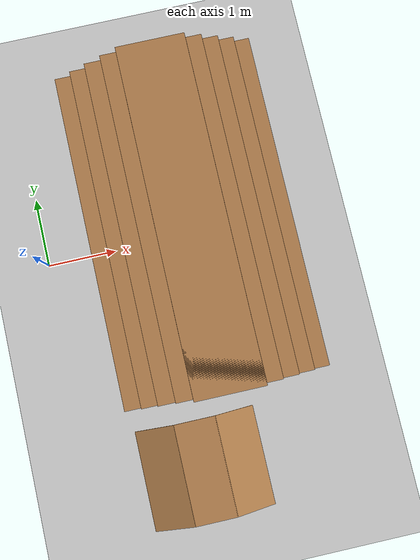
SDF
<sdf version="1.7">
 <world name="default">
  <physics type="ode">
   <max_step_size>0.001</max_step_size>
   <real_time_update_rate>1000</real_time_update_rate>
   <real_time_factor>1</real_time_factor>
   <type>world</type>
   <iters>500</iters>
  </physics>
  <light name="sun" type="directional">
   <pose>0 0 10 0 -0 0</pose>
   <diffuse>0.8 0.8 0.8 1</diffuse>
   <specular>0.2 0.2 0.2 1</specular>
   <attenuation>
    <range>1000</range>
    <constant>0.9</constant>
    <linear>0.01</linear>
    <quadratic>0.001</quadratic>
   </attenuation>
   <direction>-0.5 0.1 -0.9</direction>
   <spot><inner_angle>0</inner_angle><outer_angle>0</outer_angle><falloff>0</falloff></spot>
  </light>
  <model name="ground_plane">
   <static>1</static>
   <link name="link">
    <collision name="collision">
     <geometry><plane><normal>0 0 1</normal><size>100 100</size></plane></geometry>
     <surface><friction><ode><mu>100</mu><mu2>50</mu2></ode></friction></surface>
    </collision>
    <visual name="visual">
     <cast_shadows>0</cast_shadows>
     <geometry><plane><normal>0 0 1</normal><size>100 100</size></plane></geometry>
     <material>
      <script><uri>file://media/materials/scripts/gazebo.material</uri><name>Gazebo/Grey</name></script>
     </material>
    </visual>
   </link>
  </model>
  <gravity>0 0 -9.8</gravity>
  <magnetic_field>6e-06 2.3e-05 -4.2e-05</magnetic_field>
  <atmosphere type="adiabatic"/>
  <scene><ambient>0.4 0.4 0.4 1</ambient><background>0.7 0.7 0.7 1</background><shadows>1</shadows></scene>
  <spherical_coordinates>
   <surface_model>EARTH_WGS84</surface_model>
   <latitude_deg>0</latitude_deg>
   <longitude_deg>0</longitude_deg>
   <elevation>0</elevation>
   <heading_deg>0</heading_deg>
  </spherical_coordinates>
  <model name="stair14cm">
   <link name="link_1">
    <inertial>
     <mass>10</mass>
     <inertia><ixx>1.66667</ixx><ixy>0</ixy><ixz>0</ixz><iyy>1.66667</iyy><iyz>0</iyz><izz>1.66667</izz></inertia>
    </inertial>
    <pose>1.36897 0.002104 -0.14 0 -0 0</pose>
    <visual name="visual">
     <geometry><box><size>0.25 5 0.14</size></box></geometry>
     <material>
      <lighting>1</lighting>
      <script><uri>file://media/materials/scripts/gazebo.material</uri><name>Gazebo/Wood</name></script>
      <shader type="pixel"><normal_map>__default__</normal_map></shader>
      <ambient>0.3 0.3 0.3 1</ambient>
      <diffuse>0.7 0.7 0.7 1</diffuse>
      <specular>0.01 0.01 0.01 1</specular>
      <emissive>0 0 0 1</emissive>
     </material>
    </visual>
    <collision name="collision">
     <geometry><box><size>0.25 5 0.14</size></box></geometry>
     <surface>
      <friction>
       <ode><mu>1</mu><mu2>1</mu2><fdir1>0 0 0</fdir1><slip1>0</slip1><slip2>0</slip2></ode>
       <torsional>
        <coefficient>1</coefficient>
        <patch_radius>0</patch_radius>
        <surface_radius>0</surface_radius>
        <use_patch_radius>1</use_patch_radius>
        <ode><slip>0</slip></ode>
       </torsional>
      </friction>
      <bounce><restitution_coefficient>0</restitution_coefficient><threshold>1e+06</threshold></bounce>
      <contact>
       <collide_without_contact>0</collide_without_contact>
       <collide_without_contact_bitmask>1</collide_without_contact_bitmask>
       <collide_bitmask>1</collide_bitmask>
       <ode>
        <soft_cfm>0</soft_cfm>
        <soft_erp>0.2</soft_erp>
        <kp>1e+13</kp>
        <kd>1</kd>
        <max_vel>0.01</max_vel>
        <min_depth>0</min_depth>
       </ode>
       <bullet>
        <split_impulse>1</split_impulse>
        <split_impulse_penetration_threshold>-0.01</split_impulse_penetration_threshold>
        <soft_cfm>0</soft_cfm>
        <soft_erp>0.2</soft_erp>
        <kp>1e+13</kp>
        <kd>1</kd>
       </bullet>
      </contact>
     </surface>
    </collision>
   </link>
   <link name="link_1_clone">
    <inertial>
     <mass>10</mass>
     <inertia><ixx>1.66667</ixx><ixy>0</ixy><ixz>0</ixz><iyy>1.66667</iyy><iyz>0</iyz><izz>1.66667</izz></inertia>
    </inertial>
    <pose>1.11897 0.002104 -0.07 0 -0 0</pose>
    <visual name="visual">
     <geometry><box><size>0.25 5 0.28</size></box></geometry>
     <material>
      <lighting>1</lighting>
      <script><uri>file://media/materials/scripts/gazebo.material</uri><name>Gazebo/Wood</name></script>
      <shader type="pixel"><normal_map>__default__</normal_map></shader>
      <ambient>0.3 0.3 0.3 1</ambient>
      <diffuse>0.7 0.7 0.7 1</diffuse>
      <specular>0.01 0.01 0.01 1</specular>
      <emissive>0 0 0 1</emissive>
     </material>
    </visual>
    <collision name="collision">
     <geometry><box><size>0.25 5 0.28</size></box></geometry>
     <surface>
      <friction>
       <ode><mu>1</mu><mu2>1</mu2><fdir1>0 0 0</fdir1><slip1>0</slip1><slip2>0</slip2></ode>
       <torsional>
        <coefficient>1</coefficient>
        <patch_radius>0</patch_radius>
        <surface_radius>0</surface_radius>
        <use_patch_radius>1</use_patch_radius>
        <ode><slip>0</slip></ode>
       </torsional>
      </friction>
      <bounce><restitution_coefficient>0</restitution_coefficient><threshold>1e+06</threshold></bounce>
      <contact>
       <collide_without_contact>0</collide_without_contact>
       <collide_without_contact_bitmask>1</collide_without_contact_bitmask>
       <collide_bitmask>1</collide_bitmask>
       <ode>
        <soft_cfm>0</soft_cfm>
        <soft_erp>0.2</soft_erp>
        <kp>1e+13</kp>
        <kd>1</kd>
        <max_vel>0.01</max_vel>
        <min_depth>0</min_depth>
       </ode>
       <bullet>
        <split_impulse>1</split_impulse>
        <split_impulse_penetration_threshold>-0.01</split_impulse_penetration_threshold>
        <soft_cfm>0</soft_cfm>
        <soft_erp>0.2</soft_erp>
        <kp>1e+13</kp>
        <kd>1</kd>
       </bullet>
      </contact>
     </surface>
    </collision>
   </link>
   <link name="link_1_clone_0">
    <inertial>
     <mass>10</mass>
     <inertia><ixx>1.66667</ixx><ixy>0</ixy><ixz>0</ixz><iyy>1.66667</iyy><iyz>0</iyz><izz>1.66667</izz></inertia>
    </inertial>
    <pose>-1.36103 0.002104 -0.14 0 -0 0</pose>
    <visual name="visual">
     <geometry><box><size>0.25 5 0.14</size></box></geometry>
     <material>
      <lighting>1</lighting>
      <script><uri>file://media/materials/scripts/gazebo.material</uri><name>Gazebo/Wood</name></script>
      <shader type="pixel"><normal_map>__default__</normal_map></shader>
      <ambient>0.3 0.3 0.3 1</ambient>
      <diffuse>0.7 0.7 0.7 1</diffuse>
      <specular>0.01 0.01 0.01 1</specular>
      <emissive>0 0 0 1</emissive>
     </material>
    </visual>
    <collision name="collision">
     <geometry><box><size>0.25 5 0.14</size></box></geometry>
     <surface>
      <friction>
       <ode><mu>1</mu><mu2>1</mu2><fdir1>0 0 0</fdir1><slip1>0</slip1><slip2>0</slip2></ode>
       <torsional>
        <coefficient>1</coefficient>
        <patch_radius>0</patch_radius>
        <surface_radius>0</surface_radius>
        <use_patch_radius>1</use_patch_radius>
        <ode><slip>0</slip></ode>
       </torsional>
      </friction>
      <bounce><restitution_coefficient>0</restitution_coefficient><threshold>1e+06</threshold></bounce>
      <contact>
       <collide_without_contact>0</collide_without_contact>
       <collide_without_contact_bitmask>1</collide_without_contact_bitmask>
       <collide_bitmask>1</collide_bitmask>
       <ode>
        <soft_cfm>0</soft_cfm>
        <soft_erp>0.2</soft_erp>
        <kp>1e+13</kp>
        <kd>1</kd>
        <max_vel>0.01</max_vel>
        <min_depth>0</min_depth>
       </ode>
       <bullet>
        <split_impulse>1</split_impulse>
        <split_impulse_penetration_threshold>-0.01</split_impulse_penetration_threshold>
        <soft_cfm>0</soft_cfm>
        <soft_erp>0.2</soft_erp>
        <kp>1e+13</kp>
        <kd>1</kd>
       </bullet>
      </contact>
     </surface>
    </collision>
   </link>
   <link name="link_1_clone_clone">
    <inertial>
     <mass>10</mass>
     <inertia><ixx>1.66667</ixx><ixy>0</ixy><ixz>0</ixz><iyy>1.66667</iyy><iyz>0</iyz><izz>1.66667</izz></inertia>
    </inertial>
    <pose>0.868971 0.002104 -0 0 -0 0</pose>
    <visual name="visual">
     <geometry><box><size>0.25 5 0.42</size></box></geometry>
     <material>
      <lighting>1</lighting>
      <script><uri>file://media/materials/scripts/gazebo.material</uri><name>Gazebo/Wood</name></script>
      <shader type="pixel"><normal_map>__default__</normal_map></shader>
      <ambient>0.3 0.3 0.3 1</ambient>
      <diffuse>0.7 0.7 0.7 1</diffuse>
      <specular>0.01 0.01 0.01 1</specular>
      <emissive>0 0 0 1</emissive>
     </material>
    </visual>
    <collision name="collision">
     <geometry><box><size>0.25 5 0.42</size></box></geometry>
     <surface>
      <friction>
       <ode><mu>1</mu><mu2>1</mu2><fdir1>0 0 0</fdir1><slip1>0</slip1><slip2>0</slip2></ode>
       <torsional>
        <coefficient>1</coefficient>
        <patch_radius>0</patch_radius>
        <surface_radius>0</surface_radius>
        <use_patch_radius>1</use_patch_radius>
        <ode><slip>0</slip></ode>
       </torsional>
      </friction>
      <bounce><restitution_coefficient>0</restitution_coefficient><threshold>1e+06</threshold></bounce>
      <contact>
       <collide_without_contact>0</collide_without_contact>
       <collide_without_contact_bitmask>1</collide_without_contact_bitmask>
       <collide_bitmask>1</collide_bitmask>
       <ode>
        <soft_cfm>0</soft_cfm>
        <soft_erp>0.2</soft_erp>
        <kp>1e+13</kp>
        <kd>1</kd>
        <max_vel>0.01</max_vel>
        <min_depth>0</min_depth>
       </ode>
       <bullet>
        <split_impulse>1</split_impulse>
        <split_impulse_penetration_threshold>-0.01</split_impulse_penetration_threshold>
        <soft_cfm>0</soft_cfm>
        <soft_erp>0.2</soft_erp>
        <kp>1e+13</kp>
        <kd>1</kd>
       </bullet>
      </contact>
     </surface>
    </collision>
   </link>
   <link name="link_1_clone_clone_0">
    <inertial>
     <mass>10</mass>
     <inertia><ixx>1.66667</ixx><ixy>0</ixy><ixz>0</ixz><iyy>1.66667</iyy><iyz>0</iyz><izz>1.66667</izz></inertia>
    </inertial>
    <pose>-1.11103 0.002104 -0.07 0 -0 0</pose>
    <visual name="visual">
     <geometry><box><size>0.25 5 0.28</size></box></geometry>
     <material>
      <lighting>1</lighting>
      <script><uri>file://media/materials/scripts/gazebo.material</uri><name>Gazebo/Wood</name></script>
      <shader type="pixel"><normal_map>__default__</normal_map></shader>
      <ambient>0.3 0.3 0.3 1</ambient>
      <diffuse>0.7 0.7 0.7 1</diffuse>
      <specular>0.01 0.01 0.01 1</specular>
      <emissive>0 0 0 1</emissive>
     </material>
    </visual>
    <collision name="collision">
     <geometry><box><size>0.25 5 0.28</size></box></geometry>
     <surface>
      <friction>
       <ode><mu>1</mu><mu2>1</mu2><fdir1>0 0 0</fdir1><slip1>0</slip1><slip2>0</slip2></ode>
       <torsional>
        <coefficient>1</coefficient>
        <patch_radius>0</patch_radius>
        <surface_radius>0</surface_radius>
        <use_patch_radius>1</use_patch_radius>
        <ode><slip>0</slip></ode>
       </torsional>
      </friction>
      <bounce><restitution_coefficient>0</restitution_coefficient><threshold>1e+06</threshold></bounce>
      <contact>
       <collide_without_contact>0</collide_without_contact>
       <collide_without_contact_bitmask>1</collide_without_contact_bitmask>
       <collide_bitmask>1</collide_bitmask>
       <ode>
        <soft_cfm>0</soft_cfm>
        <soft_erp>0.2</soft_erp>
        <kp>1e+13</kp>
        <kd>1</kd>
        <max_vel>0.01</max_vel>
        <min_depth>0</min_depth>
       </ode>
       <bullet>
        <split_impulse>1</split_impulse>
        <split_impulse_penetration_threshold>-0.01</split_impulse_penetration_threshold>
        <soft_cfm>0</soft_cfm>
        <soft_erp>0.2</soft_erp>
        <kp>1e+13</kp>
        <kd>1</kd>
       </bullet>
      </contact>
     </surface>
    </collision>
   </link>
   <link name="link_1_clone_clone_clone">
    <inertial>
     <mass>10</mass>
     <inertia><ixx>1.66667</ixx><ixy>0</ixy><ixz>0</ixz><iyy>1.66667</iyy><iyz>0</iyz><izz>1.66667</izz></inertia>
    </inertial>
    <pose>0.618971 0.002104 0.07 0 -0 0</pose>
    <visual name="visual">
     <geometry><box><size>0.25 5 0.56</size></box></geometry>
     <material>
      <lighting>1</lighting>
      <script><uri>file://media/materials/scripts/gazebo.material</uri><name>Gazebo/Wood</name></script>
      <shader type="pixel"><normal_map>__default__</normal_map></shader>
      <ambient>0.3 0.3 0.3 1</ambient>
      <diffuse>0.7 0.7 0.7 1</diffuse>
      <specular>0.01 0.01 0.01 1</specular>
      <emissive>0 0 0 1</emissive>
     </material>
    </visual>
    <collision name="collision">
     <geometry><box><size>0.25 5 0.56</size></box></geometry>
     <surface>
      <friction>
       <ode><mu>1</mu><mu2>1</mu2><fdir1>0 0 0</fdir1><slip1>0</slip1><slip2>0</slip2></ode>
       <torsional>
        <coefficient>1</coefficient>
        <patch_radius>0</patch_radius>
        <surface_radius>0</surface_radius>
        <use_patch_radius>1</use_patch_radius>
        <ode><slip>0</slip></ode>
       </torsional>
      </friction>
      <bounce><restitution_coefficient>0</restitution_coefficient><threshold>1e+06</threshold></bounce>
      <contact>
       <collide_without_contact>0</collide_without_contact>
       <collide_without_contact_bitmask>1</collide_without_contact_bitmask>
       <collide_bitmask>1</collide_bitmask>
       <ode>
        <soft_cfm>0</soft_cfm>
        <soft_erp>0.2</soft_erp>
        <kp>1e+13</kp>
        <kd>1</kd>
        <max_vel>0.01</max_vel>
        <min_depth>0</min_depth>
       </ode>
       <bullet>
        <split_impulse>1</split_impulse>
        <split_impulse_penetration_threshold>-0.01</split_impulse_penetration_threshold>
        <soft_cfm>0</soft_cfm>
        <soft_erp>0.2</soft_erp>
        <kp>1e+13</kp>
        <kd>1</kd>
       </bullet>
      </contact>
     </surface>
    </collision>
   </link>
   <link name="link_1_clone_clone_clone_0">
    <inertial>
     <mass>10</mass>
     <inertia><ixx>1.66667</ixx><ixy>0</ixy><ixz>0</ixz><iyy>1.66667</iyy><iyz>0</iyz><izz>1.66667</izz></inertia>
    </inertial>
    <pose>-0.871029 0.002104 -0 0 -0 0</pose>
    <visual name="visual">
     <geometry><box><size>0.25 5 0.42</size></box></geometry>
     <material>
      <lighting>1</lighting>
      <script><uri>file://media/materials/scripts/gazebo.material</uri><name>Gazebo/Wood</name></script>
      <shader type="pixel"><normal_map>__default__</normal_map></shader>
      <ambient>0.3 0.3 0.3 1</ambient>
      <diffuse>0.7 0.7 0.7 1</diffuse>
      <specular>0.01 0.01 0.01 1</specular>
      <emissive>0 0 0 1</emissive>
     </material>
    </visual>
    <collision name="collision">
     <geometry><box><size>0.25 5 0.42</size></box></geometry>
     <surface>
      <friction>
       <ode><mu>1</mu><mu2>1</mu2><fdir1>0 0 0</fdir1><slip1>0</slip1><slip2>0</slip2></ode>
       <torsional>
        <coefficient>1</coefficient>
        <patch_radius>0</patch_radius>
        <surface_radius>0</surface_radius>
        <use_patch_radius>1</use_patch_radius>
        <ode><slip>0</slip></ode>
       </torsional>
      </friction>
      <bounce><restitution_coefficient>0</restitution_coefficient><threshold>1e+06</threshold></bounce>
      <contact>
       <collide_without_contact>0</collide_without_contact>
       <collide_without_contact_bitmask>1</collide_without_contact_bitmask>
       <collide_bitmask>1</collide_bitmask>
       <ode>
        <soft_cfm>0</soft_cfm>
        <soft_erp>0.2</soft_erp>
        <kp>1e+13</kp>
        <kd>1</kd>
        <max_vel>0.01</max_vel>
        <min_depth>0</min_depth>
       </ode>
       <bullet>
        <split_impulse>1</split_impulse>
        <split_impulse_penetration_threshold>-0.01</split_impulse_penetration_threshold>
        <soft_cfm>0</soft_cfm>
        <soft_erp>0.2</soft_erp>
        <kp>1e+13</kp>
        <kd>1</kd>
       </bullet>
      </contact>
     </surface>
    </collision>
   </link>
   <link name="link_1_clone_clone_clone_clone_0">
    <inertial>
     <mass>10</mass>
     <inertia><ixx>1.66667</ixx><ixy>0</ixy><ixz>0</ixz><iyy>1.66667</iyy><iyz>0</iyz><izz>1.66667</izz></inertia>
    </inertial>
    <pose>-0.621029 0.002104 0.07 0 -0 0</pose>
    <visual name="visual">
     <geometry><box><size>0.25 5 0.56</size></box></geometry>
     <material>
      <lighting>1</lighting>
      <script><uri>file://media/materials/scripts/gazebo.material</uri><name>Gazebo/Wood</name></script>
      <shader type="pixel"><normal_map>__default__</normal_map></shader>
      <ambient>0.3 0.3 0.3 1</ambient>
      <diffuse>0.7 0.7 0.7 1</diffuse>
      <specular>0.01 0.01 0.01 1</specular>
      <emissive>0 0 0 1</emissive>
     </material>
    </visual>
    <collision name="collision">
     <geometry><box><size>0.25 5 0.56</size></box></geometry>
     <surface>
      <friction>
       <ode><mu>1</mu><mu2>1</mu2><fdir1>0 0 0</fdir1><slip1>0</slip1><slip2>0</slip2></ode>
       <torsional>
        <coefficient>1</coefficient>
        <patch_radius>0</patch_radius>
        <surface_radius>0</surface_radius>
        <use_patch_radius>1</use_patch_radius>
        <ode><slip>0</slip></ode>
       </torsional>
      </friction>
      <bounce><restitution_coefficient>0</restitution_coefficient><threshold>1e+06</threshold></bounce>
      <contact>
       <collide_without_contact>0</collide_without_contact>
       <collide_without_contact_bitmask>1</collide_without_contact_bitmask>
       <collide_bitmask>1</collide_bitmask>
       <ode>
        <soft_cfm>0</soft_cfm>
        <soft_erp>0.2</soft_erp>
        <kp>1e+13</kp>
        <kd>1</kd>
        <max_vel>0.01</max_vel>
        <min_depth>0</min_depth>
       </ode>
       <bullet>
        <split_impulse>1</split_impulse>
        <split_impulse_penetration_threshold>-0.01</split_impulse_penetration_threshold>
        <soft_cfm>0</soft_cfm>
        <soft_erp>0.2</soft_erp>
        <kp>1e+13</kp>
        <kd>1</kd>
       </bullet>
      </contact>
     </surface>
    </collision>
   </link>
   <link name="link_1_clone_clone_clone_clone_clone">
    <inertial>
     <mass>10</mass>
     <inertia><ixx>1.66667</ixx><ixy>0</ixy><ixz>0</ixz><iyy>1.66667</iyy><iyz>0</iyz><izz>1.66667</izz></inertia>
    </inertial>
    <pose>-0.005738 -0.018936 0.14 0 -0 0</pose>
    <visual name="visual">
     <geometry><box><size>1 5 0.7</size></box></geometry>
     <material>
      <lighting>1</lighting>
      <script><uri>file://media/materials/scripts/gazebo.material</uri><name>Gazebo/Wood</name></script>
      <shader type="pixel"><normal_map>__default__</normal_map></shader>
      <ambient>0.3 0.3 0.3 1</ambient>
      <diffuse>0.7 0.7 0.7 1</diffuse>
      <specular>0.01 0.01 0.01 1</specular>
      <emissive>0 0 0 1</emissive>
     </material>
    </visual>
    <collision name="collision">
     <geometry><box><size>1 5 0.7</size></box></geometry>
     <surface>
      <friction>
       <ode><mu>1</mu><mu2>1</mu2><fdir1>0 0 0</fdir1><slip1>0</slip1><slip2>0</slip2></ode>
       <torsional>
        <coefficient>1</coefficient>
        <patch_radius>0</patch_radius>
        <surface_radius>0</surface_radius>
        <use_patch_radius>1</use_patch_radius>
        <ode><slip>0</slip></ode>
       </torsional>
      </friction>
      <bounce><restitution_coefficient>0</restitution_coefficient><threshold>1e+06</threshold></bounce>
      <contact>
       <collide_without_contact>0</collide_without_contact>
       <collide_without_contact_bitmask>1</collide_without_contact_bitmask>
       <collide_bitmask>1</collide_bitmask>
       <ode>
        <soft_cfm>0</soft_cfm>
        <soft_erp>0.2</soft_erp>
        <kp>1e+13</kp>
        <kd>1</kd>
        <max_vel>0.01</max_vel>
        <min_depth>0</min_depth>
       </ode>
       <bullet>
        <split_impulse>1</split_impulse>
        <split_impulse_penetration_threshold>-0.01</split_impulse_penetration_threshold>
        <soft_cfm>0</soft_cfm>
        <soft_erp>0.2</soft_erp>
        <kp>1e+13</kp>
        <kd>1</kd>
       </bullet>
      </contact>
     </surface>
    </collision>
   </link>
   <link name="link_1_clone_clone_clone_clone_clone_0">
    <inertial>
     <mass>10</mass>
     <inertia><ixx>1.66667</ixx><ixy>0</ixy><ixz>0</ixz><iyy>1.66667</iyy><iyz>0</iyz><izz>1.66667</izz></inertia>
    </inertial>
    <pose>-0.006029 0.002104 0.14 0 -0 0</pose>
    <visual name="visual">
     <geometry><box><size>1 5 0.7</size></box></geometry>
     <material>
      <lighting>1</lighting>
      <script><uri>file://media/materials/scripts/gazebo.material</uri><name>Gazebo/Wood</name></script>
      <shader type="pixel"><normal_map>__default__</normal_map></shader>
      <ambient>0.3 0.3 0.3 1</ambient>
      <diffuse>0.7 0.7 0.7 1</diffuse>
      <specular>0.01 0.01 0.01 1</specular>
      <emissive>0 0 0 1</emissive>
     </material>
    </visual>
    <collision name="collision">
     <geometry><box><size>1 5 0.7</size></box></geometry>
     <surface>
      <friction>
       <ode><mu>1</mu><mu2>1</mu2><fdir1>0 0 0</fdir1><slip1>0</slip1><slip2>0</slip2></ode>
       <torsional>
        <coefficient>1</coefficient>
        <patch_radius>0</patch_radius>
        <surface_radius>0</surface_radius>
        <use_patch_radius>1</use_patch_radius>
        <ode><slip>0</slip></ode>
       </torsional>
      </friction>
      <bounce><restitution_coefficient>0</restitution_coefficient><threshold>1e+06</threshold></bounce>
      <contact>
       <collide_without_contact>0</collide_without_contact>
       <collide_without_contact_bitmask>1</collide_without_contact_bitmask>
       <collide_bitmask>1</collide_bitmask>
       <ode>
        <soft_cfm>0</soft_cfm>
        <soft_erp>0.2</soft_erp>
        <kp>1e+13</kp>
        <kd>1</kd>
        <max_vel>0.01</max_vel>
        <min_depth>0</min_depth>
       </ode>
       <bullet>
        <split_impulse>1</split_impulse>
        <split_impulse_penetration_threshold>-0.01</split_impulse_penetration_threshold>
        <soft_cfm>0</soft_cfm>
        <soft_erp>0.2</soft_erp>
        <kp>1e+13</kp>
        <kd>1</kd>
       </bullet>
      </contact>
     </surface>
    </collision>
   </link>
   <joint name="link_1_JOINT_0" type="fixed">
    <parent>link_1</parent>
    <child>link_1_clone</child>
    <physics>
     <ode><limit><cfm>0</cfm><erp>0.2</erp></limit><suspension><cfm>0</cfm><erp>0.2</erp></suspension></ode>
    </physics>
   </joint>
   <joint name="link_1_clone_0_JOINT_2" type="fixed">
    <parent>link_1_clone_0</parent>
    <child>link_1_clone_clone</child>
    <physics>
     <ode><limit><cfm>0</cfm><erp>0.2</erp></limit><suspension><cfm>0</cfm><erp>0.2</erp></suspension></ode>
    </physics>
   </joint>
   <joint name="link_1_clone_JOINT_1" type="fixed">
    <parent>link_1_clone</parent>
    <child>link_1_clone_0</child>
    <physics>
     <ode><limit><cfm>0</cfm><erp>0.2</erp></limit><suspension><cfm>0</cfm><erp>0.2</erp></suspension></ode>
    </physics>
   </joint>
   <joint name="link_1_clone_clone_0_JOINT_4" type="fixed">
    <parent>link_1_clone_clone_0</parent>
    <child>link_1_clone_clone_clone</child>
    <physics>
     <ode><limit><cfm>0</cfm><erp>0.2</erp></limit><suspension><cfm>0</cfm><erp>0.2</erp></suspension></ode>
    </physics>
   </joint>
   <joint name="link_1_clone_clone_JOINT_3" type="fixed">
    <parent>link_1_clone_clone</parent>
    <child>link_1_clone_clone_0</child>
    <physics>
     <ode><limit><cfm>0</cfm><erp>0.2</erp></limit><suspension><cfm>0</cfm><erp>0.2</erp></suspension></ode>
    </physics>
   </joint>
   <joint name="link_1_clone_clone_clone_0_JOINT_6" type="fixed">
    <parent>link_1_clone_clone_clone_0</parent>
    <child>link_1_clone_clone_clone_clone_0</child>
    <physics>
     <ode><limit><cfm>0</cfm><erp>0.2</erp></limit><suspension><cfm>0</cfm><erp>0.2</erp></suspension></ode>
    </physics>
   </joint>
   <joint name="link_1_clone_clone_clone_JOINT_5" type="fixed">
    <parent>link_1_clone_clone_clone</parent>
    <child>link_1_clone_clone_clone_0</child>
    <physics>
     <ode><limit><cfm>0</cfm><erp>0.2</erp></limit><suspension><cfm>0</cfm><erp>0.2</erp></suspension></ode>
    </physics>
   </joint>
   <joint name="link_1_clone_clone_clone_clone_0_JOINT_7" type="fixed">
    <parent>link_1_clone_clone_clone_clone_0</parent>
    <child>link_1_clone_clone_clone_clone_clone</child>
    <physics>
     <ode><limit><cfm>0</cfm><erp>0.2</erp></limit><suspension><cfm>0</cfm><erp>0.2</erp></suspension></ode>
    </physics>
   </joint>
   <joint name="link_1_clone_clone_clone_clone_clone_JOINT_8" type="fixed">
    <parent>link_1_clone_clone_clone_clone_clone</parent>
    <child>link_1_clone_clone_clone_clone_clone_0</child>
    <physics>
     <ode><limit><cfm>0</cfm><erp>0.2</erp></limit><suspension><cfm>0</cfm><erp>0.2</erp></suspension></ode>
    </physics>
   </joint>
   <static>0</static>
   <pose>2.13796 0.212543 0.209984 7e-06 -0 -9e-06</pose>
  </model>
  <model name="slope*20o">
   <link name="link_0">
    <inertial>
     <mass>100</mass>
     <inertia><ixx>2.08417</ixx><ixy>0</ixy><ixz>0</ixz><iyy>3.00083</iyy><iyz>0</iyz><izz>5.08333</izz></inertia>
    </inertial>
    <pose>0.255259 -0 0.090294 0 -0.34 0</pose>
    <visual name="visual">
     <geometry><box><size>0.6 1.4 0.01</size></box></geometry>
     <material>
      <lighting>1</lighting>
      <script><uri>file://media/materials/scripts/gazebo.material</uri><name>Gazebo/WoodFloor</name></script>
      <shader type="pixel"><normal_map>__default__</normal_map></shader>
      <ambient>0.3 0.3 0.3 1</ambient>
      <diffuse>0.7 0.7 0.7 1</diffuse>
      <specular>0.01 0.01 0.01 1</specular>
      <emissive>0 0 0 1</emissive>
     </material>
    </visual>
    <collision name="collision">
     <geometry><box><size>0.6 1.4 0.01</size></box></geometry>
     <surface>
      <friction>
       <ode><mu>3</mu><mu2>3.03</mu2><fdir1>0 0 0</fdir1><slip1>0</slip1><slip2>0</slip2></ode>
       <torsional>
        <coefficient>1</coefficient>
        <patch_radius>0</patch_radius>
        <surface_radius>0</surface_radius>
        <use_patch_radius>1</use_patch_radius>
        <ode><slip>0</slip></ode>
       </torsional>
      </friction>
      <bounce><restitution_coefficient>0</restitution_coefficient><threshold>1e+06</threshold></bounce>
      <contact>
       <collide_without_contact>0</collide_without_contact>
       <collide_without_contact_bitmask>1</collide_without_contact_bitmask>
       <collide_bitmask>1</collide_bitmask>
       <ode>
        <soft_cfm>0</soft_cfm>
        <soft_erp>0.2</soft_erp>
        <kp>1e+13</kp>
        <kd>1</kd>
        <max_vel>0.01</max_vel>
        <min_depth>0</min_depth>
       </ode>
       <bullet>
        <split_impulse>1</split_impulse>
        <split_impulse_penetration_threshold>-0.01</split_impulse_penetration_threshold>
        <soft_cfm>0</soft_cfm>
        <soft_erp>0.2</soft_erp>
        <kp>1e+13</kp>
        <kd>1</kd>
       </bullet>
      </contact>
     </surface>
    </collision>
   </link>
   <link name="link_0_clone">
    <inertial>
     <mass>100</mass>
     <inertia><ixx>2.08417</ixx><ixy>0</ixy><ixz>0</ixz><iyy>3.00083</iyy><iyz>0</iyz><izz>5.08333</izz></inertia>
    </inertial>
    <pose>1.40913 2e-06 0.090294 0 0.34 0</pose>
    <visual name="visual">
     <geometry><box><size>0.6 1.4 0.01</size></box></geometry>
     <material>
      <lighting>1</lighting>
      <script><uri>file://media/materials/scripts/gazebo.material</uri><name>Gazebo/WoodFloor</name></script>
      <shader type="pixel"><normal_map>__default__</normal_map></shader>
      <ambient>0.3 0.3 0.3 1</ambient>
      <diffuse>0.7 0.7 0.7 1</diffuse>
      <specular>0.01 0.01 0.01 1</specular>
      <emissive>0 0 0 1</emissive>
     </material>
    </visual>
    <collision name="collision">
     <geometry><box><size>0.6 1.4 0.01</size></box></geometry>
     <surface>
      <friction>
       <ode><mu>2</mu><mu2>2</mu2><fdir1>0 0 0</fdir1><slip1>0</slip1><slip2>0</slip2></ode>
       <torsional>
        <coefficient>1</coefficient>
        <patch_radius>0</patch_radius>
        <surface_radius>0</surface_radius>
        <use_patch_radius>1</use_patch_radius>
        <ode><slip>0</slip></ode>
       </torsional>
      </friction>
      <bounce><restitution_coefficient>0</restitution_coefficient><threshold>1e+06</threshold></bounce>
      <contact>
       <collide_without_contact>0</collide_without_contact>
       <collide_without_contact_bitmask>1</collide_without_contact_bitmask>
       <collide_bitmask>1</collide_bitmask>
       <ode>
        <soft_cfm>0</soft_cfm>
        <soft_erp>0.2</soft_erp>
        <kp>1e+13</kp>
        <kd>1</kd>
        <max_vel>0.01</max_vel>
        <min_depth>0</min_depth>
       </ode>
       <bullet>
        <split_impulse>1</split_impulse>
        <split_impulse_penetration_threshold>-0.01</split_impulse_penetration_threshold>
        <soft_cfm>0</soft_cfm>
        <soft_erp>0.2</soft_erp>
        <kp>1e+13</kp>
        <kd>1</kd>
       </bullet>
      </contact>
     </surface>
    </collision>
   </link>
   <link name="link_0_clone_clone">
    <inertial>
     <mass>100</mass>
     <inertia><ixx>2.08417</ixx><ixy>0</ixy><ixz>0</ixz><iyy>3.00083</iyy><iyz>0</iyz><izz>5.08333</izz></inertia>
    </inertial>
    <pose>0.834081 0.00026 0.189605 0 -0 0</pose>
    <visual name="visual">
     <geometry><box><size>0.6 1.4 0.01</size></box></geometry>
     <material>
      <lighting>1</lighting>
      <script><uri>file://media/materials/scripts/gazebo.material</uri><name>Gazebo/WoodFloor</name></script>
      <shader type="pixel"><normal_map>__default__</normal_map></shader>
      <ambient>0.3 0.3 0.3 1</ambient>
      <diffuse>0.7 0.7 0.7 1</diffuse>
      <specular>0.01 0.01 0.01 1</specular>
      <emissive>0 0 0 1</emissive>
     </material>
    </visual>
    <collision name="collision">
     <geometry><box><size>0.6 1.4 0.01</size></box></geometry>
     <surface>
      <friction>
       <ode><mu>2</mu><mu2>2</mu2><fdir1>0 0 0</fdir1><slip1>0</slip1><slip2>0</slip2></ode>
       <torsional>
        <coefficient>1</coefficient>
        <patch_radius>0</patch_radius>
        <surface_radius>0</surface_radius>
        <use_patch_radius>1</use_patch_radius>
        <ode><slip>0</slip></ode>
       </torsional>
      </friction>
      <bounce><restitution_coefficient>0</restitution_coefficient><threshold>1e+06</threshold></bounce>
      <contact>
       <collide_without_contact>0</collide_without_contact>
       <collide_without_contact_bitmask>1</collide_without_contact_bitmask>
       <collide_bitmask>1</collide_bitmask>
       <ode>
        <soft_cfm>0</soft_cfm>
        <soft_erp>0.2</soft_erp>
        <kp>1e+13</kp>
        <kd>1</kd>
        <max_vel>0.01</max_vel>
        <min_depth>0</min_depth>
       </ode>
       <bullet>
        <split_impulse>1</split_impulse>
        <split_impulse_penetration_threshold>-0.01</split_impulse_penetration_threshold>
        <soft_cfm>0</soft_cfm>
        <soft_erp>0.2</soft_erp>
        <kp>1e+13</kp>
        <kd>1</kd>
       </bullet>
      </contact>
     </surface>
    </collision>
   </link>
   <joint name="link_0_JOINT_0" type="fixed">
    <parent>link_0</parent>
    <child>link_0_clone</child>
    <physics>
     <ode><limit><cfm>0</cfm><erp>0.2</erp></limit><suspension><cfm>0</cfm><erp>0.2</erp></suspension></ode>
    </physics>
   </joint>
   <joint name="link_0_clone_JOINT_1" type="fixed">
    <parent>link_0_clone</parent>
    <child>link_0_clone_clone</child>
    <physics>
     <ode><limit><cfm>0</cfm><erp>0.2</erp></limit><suspension><cfm>0</cfm><erp>0.2</erp></suspension></ode>
    </physics>
   </joint>
   <static>0</static>
   <pose>0.752242 -3.30599 0.014462 8e-06 5e-06 0.000904</pose>
  </model>
 </world>
</sdf>
